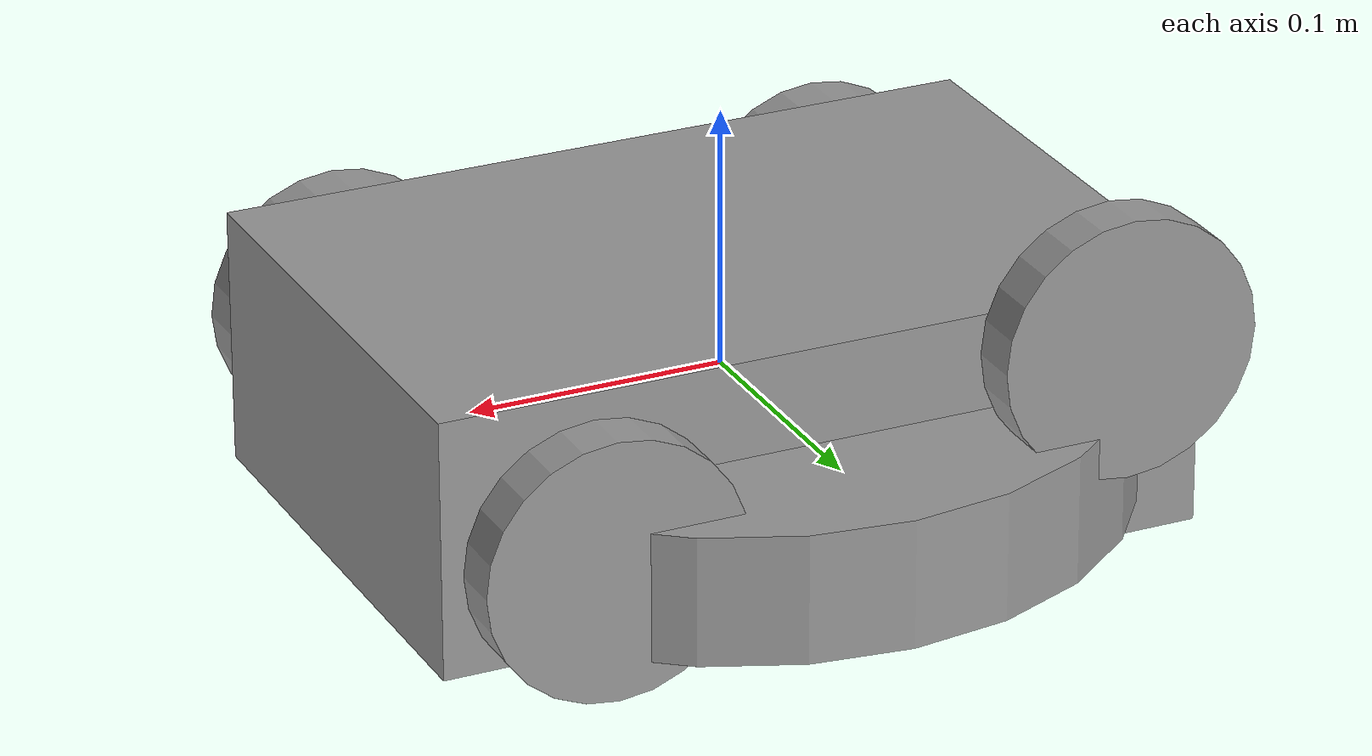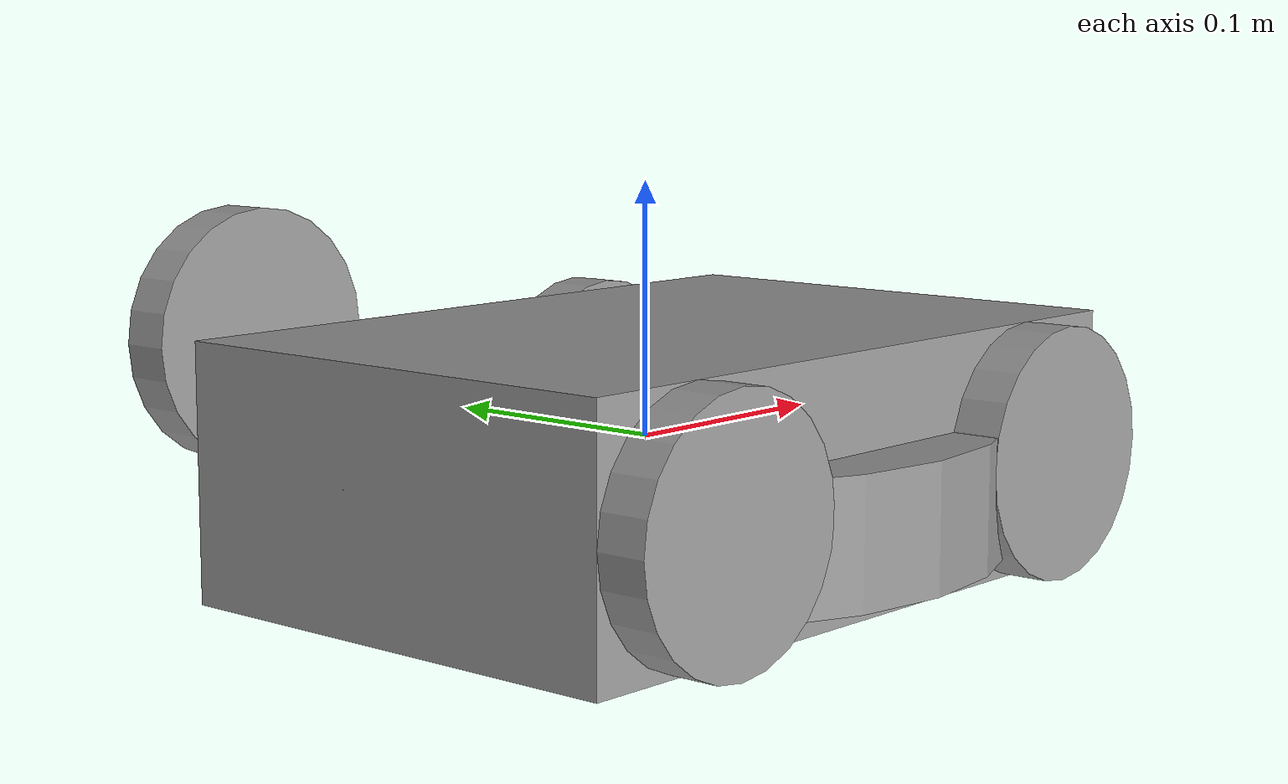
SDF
<?xml version='1.0'?>
<sdf version='1.7'>
  <model name='Project'>
    <link name='link_0'>
      <inertial>
        <mass>1</mass>
        <inertia>
          <ixx>0.166667</ixx>
          <ixy>0</ixy>
          <ixz>0</ixz>
          <iyy>0.166667</iyy>
          <iyz>0</iyz>
          <izz>0.166667</izz>
        </inertia>
        <pose>0 0 0 0 -0 0</pose>
      </inertial>
      <pose>3e-06 -0.009986 -0.005415 0 -0 0</pose>
      <gravity>1</gravity>
      <self_collide>0</self_collide>
      <kinematic>0</kinematic>
      <enable_wind>0</enable_wind>
      <visual name='visual'>
        <pose>0 0 0 0 -0 0</pose>
        <geometry>
          <box>
            <size>0.3 0.2 0.1</size>
          </box>
        </geometry>
        <material>
          <lighting>1</lighting>
          <script>
            <uri>file://media/materials/scripts/gazebo.material</uri>
            <name>Gazebo/Grey</name>
          </script>
          <shader type='pixel'>
            <normal_map>__default__</normal_map>
          </shader>
          <ambient>0.3 0.3 0.3 1</ambient>
          <diffuse>0.7 0.7 0.7 1</diffuse>
          <specular>0.01 0.01 0.01 1</specular>
          <emissive>0 0 0 1</emissive>
        </material>
        <transparency>0</transparency>
        <cast_shadows>1</cast_shadows>
      </visual>
      <collision name='collision'>
        <laser_retro>0</laser_retro>
        <max_contacts>10</max_contacts>
        <pose>0 0 0 0 -0 0</pose>
        <geometry>
          <box>
            <size>0.3 0.2 0.1</size>
          </box>
        </geometry>
        <surface>
          <friction>
            <ode>
              <mu>1</mu>
              <mu2>1</mu2>
              <fdir1>0 0 0</fdir1>
              <slip1>0</slip1>
              <slip2>0</slip2>
            </ode>
            <torsional>
              <coefficient>1</coefficient>
              <patch_radius>0</patch_radius>
              <surface_radius>0</surface_radius>
              <use_patch_radius>1</use_patch_radius>
              <ode>
                <slip>0</slip>
              </ode>
            </torsional>
          </friction>
          <bounce>
            <restitution_coefficient>0</restitution_coefficient>
            <threshold>1e+06</threshold>
          </bounce>
          <contact>
            <collide_without_contact>0</collide_without_contact>
            <collide_without_contact_bitmask>1</collide_without_contact_bitmask>
            <collide_bitmask>1</collide_bitmask>
            <ode>
              <soft_cfm>0</soft_cfm>
              <soft_erp>0.2</soft_erp>
              <kp>1e+13</kp>
              <kd>1</kd>
              <max_vel>0.01</max_vel>
              <min_depth>0</min_depth>
            </ode>
            <bullet>
              <split_impulse>1</split_impulse>
              <split_impulse_penetration_threshold>-0.01</split_impulse_penetration_threshold>
              <soft_cfm>0</soft_cfm>
              <soft_erp>0.2</soft_erp>
              <kp>1e+13</kp>
              <kd>1</kd>
            </bullet>
          </contact>
        </surface>
      </collision>
    </link>
    <link name='link_1'>
      <inertial>
        <mass>1</mass>
        <inertia>
          <ixx>0.145833</ixx>
          <ixy>0</ixy>
          <ixz>0</ixz>
          <iyy>0.145833</iyy>
          <iyz>0</iyz>
          <izz>0.125</izz>
        </inertia>
        <pose>0 0 0 0 -0 0</pose>
      </inertial>
      <pose>-0.099997 -0.120027 -0.005434 1.5705 -0 0</pose>
      <gravity>1</gravity>
      <self_collide>0</self_collide>
      <kinematic>0</kinematic>
      <enable_wind>0</enable_wind>
      <visual name='visual'>
        <pose>0 0 0 0 -0 0</pose>
        <geometry>
          <cylinder>
            <radius>0.05</radius>
            <length>0.02</length>
          </cylinder>
        </geometry>
        <material>
          <lighting>1</lighting>
          <script>
            <uri>file://media/materials/scripts/gazebo.material</uri>
            <name>Gazebo/Grey</name>
          </script>
          <shader type='pixel'>
            <normal_map>__default__</normal_map>
          </shader>
          <ambient>0.3 0.3 0.3 1</ambient>
          <diffuse>0.7 0.7 0.7 1</diffuse>
          <specular>0.01 0.01 0.01 1</specular>
          <emissive>0 0 0 1</emissive>
        </material>
        <transparency>0</transparency>
        <cast_shadows>1</cast_shadows>
      </visual>
      <collision name='collision'>
        <laser_retro>0</laser_retro>
        <max_contacts>10</max_contacts>
        <pose>0 0 0 0 -0 0</pose>
        <geometry>
          <cylinder>
            <radius>0.05</radius>
            <length>0.02</length>
          </cylinder>
        </geometry>
        <surface>
          <friction>
            <ode>
              <mu>1</mu>
              <mu2>1</mu2>
              <fdir1>0 0 0</fdir1>
              <slip1>0</slip1>
              <slip2>0</slip2>
            </ode>
            <torsional>
              <coefficient>1</coefficient>
              <patch_radius>0</patch_radius>
              <surface_radius>0</surface_radius>
              <use_patch_radius>1</use_patch_radius>
              <ode>
                <slip>0</slip>
              </ode>
            </torsional>
          </friction>
          <bounce>
            <restitution_coefficient>0</restitution_coefficient>
            <threshold>1e+06</threshold>
          </bounce>
          <contact>
            <collide_without_contact>0</collide_without_contact>
            <collide_without_contact_bitmask>1</collide_without_contact_bitmask>
            <collide_bitmask>1</collide_bitmask>
            <ode>
              <soft_cfm>0</soft_cfm>
              <soft_erp>0.2</soft_erp>
              <kp>1e+13</kp>
              <kd>1</kd>
              <max_vel>0.01</max_vel>
              <min_depth>0</min_depth>
            </ode>
            <bullet>
              <split_impulse>1</split_impulse>
              <split_impulse_penetration_threshold>-0.01</split_impulse_penetration_threshold>
              <soft_cfm>0</soft_cfm>
              <soft_erp>0.2</soft_erp>
              <kp>1e+13</kp>
              <kd>1</kd>
            </bullet>
          </contact>
        </surface>
      </collision>
    </link>
    <link name='link_1_clone'>
      <inertial>
        <mass>1</mass>
        <inertia>
          <ixx>0.145833</ixx>
          <ixy>0</ixy>
          <ixz>0</ixz>
          <iyy>0.145833</iyy>
          <iyz>0</iyz>
          <izz>0.125</izz>
        </inertia>
        <pose>0 0 0 0 -0 0</pose>
      </inertial>
      <pose>-0.099997 0.119999 0.039585 1.5705 -0 0</pose>
      <gravity>1</gravity>
      <self_collide>0</self_collide>
      <kinematic>0</kinematic>
      <enable_wind>0</enable_wind>
      <visual name='visual'>
        <pose>0 0 0 0 -0 0</pose>
        <geometry>
          <cylinder>
            <radius>0.05</radius>
            <length>0.02</length>
          </cylinder>
        </geometry>
        <material>
          <lighting>1</lighting>
          <script>
            <uri>file://media/materials/scripts/gazebo.material</uri>
            <name>Gazebo/Grey</name>
          </script>
          <shader type='pixel'>
            <normal_map>__default__</normal_map>
          </shader>
          <ambient>0.3 0.3 0.3 1</ambient>
          <diffuse>0.7 0.7 0.7 1</diffuse>
          <specular>0.01 0.01 0.01 1</specular>
          <emissive>0 0 0 1</emissive>
        </material>
        <transparency>0</transparency>
        <cast_shadows>1</cast_shadows>
      </visual>
      <collision name='collision'>
        <laser_retro>0</laser_retro>
        <max_contacts>10</max_contacts>
        <pose>0 0 0 0 -0 0</pose>
        <geometry>
          <cylinder>
            <radius>0.05</radius>
            <length>0.02</length>
          </cylinder>
        </geometry>
        <surface>
          <friction>
            <ode>
              <mu>1</mu>
              <mu2>1</mu2>
              <fdir1>0 0 0</fdir1>
              <slip1>0</slip1>
              <slip2>0</slip2>
            </ode>
            <torsional>
              <coefficient>1</coefficient>
              <patch_radius>0</patch_radius>
              <surface_radius>0</surface_radius>
              <use_patch_radius>1</use_patch_radius>
              <ode>
                <slip>0</slip>
              </ode>
            </torsional>
          </friction>
          <bounce>
            <restitution_coefficient>0</restitution_coefficient>
            <threshold>1e+06</threshold>
          </bounce>
          <contact>
            <collide_without_contact>0</collide_without_contact>
            <collide_without_contact_bitmask>1</collide_without_contact_bitmask>
            <collide_bitmask>1</collide_bitmask>
            <ode>
              <soft_cfm>0</soft_cfm>
              <soft_erp>0.2</soft_erp>
              <kp>1e+13</kp>
              <kd>1</kd>
              <max_vel>0.01</max_vel>
              <min_depth>0</min_depth>
            </ode>
            <bullet>
              <split_impulse>1</split_impulse>
              <split_impulse_penetration_threshold>-0.01</split_impulse_penetration_threshold>
              <soft_cfm>0</soft_cfm>
              <soft_erp>0.2</soft_erp>
              <kp>1e+13</kp>
              <kd>1</kd>
            </bullet>
          </contact>
        </surface>
      </collision>
    </link>
    <link name='link_1_clone_0'>
      <inertial>
        <mass>1</mass>
        <inertia>
          <ixx>0.145833</ixx>
          <ixy>0</ixy>
          <ixz>0</ixz>
          <iyy>0.145833</iyy>
          <iyz>0</iyz>
          <izz>0.125</izz>
        </inertia>
        <pose>0 0 0 0 -0 0</pose>
      </inertial>
      <pose>0.100003 0.12 -0.005412 1.5705 -0 0</pose>
      <gravity>1</gravity>
      <self_collide>0</self_collide>
      <kinematic>0</kinematic>
      <enable_wind>0</enable_wind>
      <visual name='visual'>
        <pose>0 0 0 0 -0 0</pose>
        <geometry>
          <cylinder>
            <radius>0.05</radius>
            <length>0.02</length>
          </cylinder>
        </geometry>
        <material>
          <lighting>1</lighting>
          <script>
            <uri>file://media/materials/scripts/gazebo.material</uri>
            <name>Gazebo/Grey</name>
          </script>
          <shader type='pixel'>
            <normal_map>__default__</normal_map>
          </shader>
          <ambient>0.3 0.3 0.3 1</ambient>
          <diffuse>0.7 0.7 0.7 1</diffuse>
          <specular>0.01 0.01 0.01 1</specular>
          <emissive>0 0 0 1</emissive>
        </material>
        <transparency>0</transparency>
        <cast_shadows>1</cast_shadows>
      </visual>
      <collision name='collision'>
        <laser_retro>0</laser_retro>
        <max_contacts>10</max_contacts>
        <pose>0 0 0 0 -0 0</pose>
        <geometry>
          <cylinder>
            <radius>0.05</radius>
            <length>0.02</length>
          </cylinder>
        </geometry>
        <surface>
          <friction>
            <ode>
              <mu>1</mu>
              <mu2>1</mu2>
              <fdir1>0 0 0</fdir1>
              <slip1>0</slip1>
              <slip2>0</slip2>
            </ode>
            <torsional>
              <coefficient>1</coefficient>
              <patch_radius>0</patch_radius>
              <surface_radius>0</surface_radius>
              <use_patch_radius>1</use_patch_radius>
              <ode>
                <slip>0</slip>
              </ode>
            </torsional>
          </friction>
          <bounce>
            <restitution_coefficient>0</restitution_coefficient>
            <threshold>1e+06</threshold>
          </bounce>
          <contact>
            <collide_without_contact>0</collide_without_contact>
            <collide_without_contact_bitmask>1</collide_without_contact_bitmask>
            <collide_bitmask>1</collide_bitmask>
            <ode>
              <soft_cfm>0</soft_cfm>
              <soft_erp>0.2</soft_erp>
              <kp>1e+13</kp>
              <kd>1</kd>
              <max_vel>0.01</max_vel>
              <min_depth>0</min_depth>
            </ode>
            <bullet>
              <split_impulse>1</split_impulse>
              <split_impulse_penetration_threshold>-0.01</split_impulse_penetration_threshold>
              <soft_cfm>0</soft_cfm>
              <soft_erp>0.2</soft_erp>
              <kp>1e+13</kp>
              <kd>1</kd>
            </bullet>
          </contact>
        </surface>
      </collision>
    </link>
    <link name='link_1_clone_1'>
      <inertial>
        <mass>1</mass>
        <inertia>
          <ixx>0.145833</ixx>
          <ixy>0</ixy>
          <ixz>0</ixz>
          <iyy>0.145833</iyy>
          <iyz>0</iyz>
          <izz>0.125</izz>
        </inertia>
        <pose>0 0 0 0 -0 0</pose>
      </inertial>
      <pose>0.100003 -0.12 -0.005412 1.5705 -0 0</pose>
      <gravity>1</gravity>
      <self_collide>0</self_collide>
      <kinematic>0</kinematic>
      <enable_wind>0</enable_wind>
      <visual name='visual'>
        <pose>0 0 0 0 -0 0</pose>
        <geometry>
          <cylinder>
            <radius>0.05</radius>
            <length>0.02</length>
          </cylinder>
        </geometry>
        <material>
          <lighting>1</lighting>
          <script>
            <uri>file://media/materials/scripts/gazebo.material</uri>
            <name>Gazebo/Grey</name>
          </script>
          <shader type='pixel'>
            <normal_map>__default__</normal_map>
          </shader>
          <ambient>0.3 0.3 0.3 1</ambient>
          <diffuse>0.7 0.7 0.7 1</diffuse>
          <specular>0.01 0.01 0.01 1</specular>
          <emissive>0 0 0 1</emissive>
        </material>
        <transparency>0</transparency>
        <cast_shadows>1</cast_shadows>
      </visual>
      <collision name='collision'>
        <laser_retro>0</laser_retro>
        <max_contacts>10</max_contacts>
        <pose>0 0 0 0 -0 0</pose>
        <geometry>
          <cylinder>
            <radius>0.05</radius>
            <length>0.02</length>
          </cylinder>
        </geometry>
        <surface>
          <friction>
            <ode>
              <mu>1</mu>
              <mu2>1</mu2>
              <fdir1>0 0 0</fdir1>
              <slip1>0</slip1>
              <slip2>0</slip2>
            </ode>
            <torsional>
              <coefficient>1</coefficient>
              <patch_radius>0</patch_radius>
              <surface_radius>0</surface_radius>
              <use_patch_radius>1</use_patch_radius>
              <ode>
                <slip>0</slip>
              </ode>
            </torsional>
          </friction>
          <bounce>
            <restitution_coefficient>0</restitution_coefficient>
            <threshold>1e+06</threshold>
          </bounce>
          <contact>
            <collide_without_contact>0</collide_without_contact>
            <collide_without_contact_bitmask>1</collide_without_contact_bitmask>
            <collide_bitmask>1</collide_bitmask>
            <ode>
              <soft_cfm>0</soft_cfm>
              <soft_erp>0.2</soft_erp>
              <kp>1e+13</kp>
              <kd>1</kd>
              <max_vel>0.01</max_vel>
              <min_depth>0</min_depth>
            </ode>
            <bullet>
              <split_impulse>1</split_impulse>
              <split_impulse_penetration_threshold>-0.01</split_impulse_penetration_threshold>
              <soft_cfm>0</soft_cfm>
              <soft_erp>0.2</soft_erp>
              <kp>1e+13</kp>
              <kd>1</kd>
            </bullet>
          </contact>
        </surface>
      </collision>
    </link>
    <link name='link_2'>
      <inertial>
        <mass>1</mass>
        <inertia>
          <ixx>0.145833</ixx>
          <ixy>0</ixy>
          <ixz>0</ixz>
          <iyy>0.145833</iyy>
          <iyz>0</iyz>
          <izz>0.125</izz>
        </inertia>
        <pose>0 0 0 0 -0 0</pose>
      </inertial>
      <pose>3e-06 0.010014 -0.017915 0 -0 0</pose>
      <gravity>1</gravity>
      <self_collide>0</self_collide>
      <kinematic>0</kinematic>
      <enable_wind>0</enable_wind>
      <visual name='visual'>
        <pose>0 0 0 0 -0 0</pose>
        <geometry>
          <cylinder>
            <radius>0.15</radius>
            <length>0.05</length>
          </cylinder>
        </geometry>
        <material>
          <lighting>1</lighting>
          <script>
            <uri>file://media/materials/scripts/gazebo.material</uri>
            <name>Gazebo/Grey</name>
          </script>
          <shader type='pixel'>
            <normal_map>__default__</normal_map>
          </shader>
          <ambient>0.3 0.3 0.3 1</ambient>
          <diffuse>0.7 0.7 0.7 1</diffuse>
          <specular>0.01 0.01 0.01 1</specular>
          <emissive>0 0 0 1</emissive>
        </material>
        <transparency>0</transparency>
        <cast_shadows>1</cast_shadows>
      </visual>
      <collision name='collision'>
        <laser_retro>0</laser_retro>
        <max_contacts>10</max_contacts>
        <pose>0 0 0 0 -0 0</pose>
        <geometry>
          <cylinder>
            <radius>0.15</radius>
            <length>0.05</length>
          </cylinder>
        </geometry>
        <surface>
          <friction>
            <ode>
              <mu>1</mu>
              <mu2>1</mu2>
              <fdir1>0 0 0</fdir1>
              <slip1>0</slip1>
              <slip2>0</slip2>
            </ode>
            <torsional>
              <coefficient>1</coefficient>
              <patch_radius>0</patch_radius>
              <surface_radius>0</surface_radius>
              <use_patch_radius>1</use_patch_radius>
              <ode>
                <slip>0</slip>
              </ode>
            </torsional>
          </friction>
          <bounce>
            <restitution_coefficient>0</restitution_coefficient>
            <threshold>1e+06</threshold>
          </bounce>
          <contact>
            <collide_without_contact>0</collide_without_contact>
            <collide_without_contact_bitmask>1</collide_without_contact_bitmask>
            <collide_bitmask>1</collide_bitmask>
            <ode>
              <soft_cfm>0</soft_cfm>
              <soft_erp>0.2</soft_erp>
              <kp>1e+13</kp>
              <kd>1</kd>
              <max_vel>0.01</max_vel>
              <min_depth>0</min_depth>
            </ode>
            <bullet>
              <split_impulse>1</split_impulse>
              <split_impulse_penetration_threshold>-0.01</split_impulse_penetration_threshold>
              <soft_cfm>0</soft_cfm>
              <soft_erp>0.2</soft_erp>
              <kp>1e+13</kp>
              <kd>1</kd>
            </bullet>
          </contact>
        </surface>
      </collision>
    </link>
    <joint name='link_0_JOINT_0' type='revolute'>
      <parent>link_0</parent>
      <child>link_1</child>
      <pose>0 0 0 0 -0 0</pose>
      <axis>
        <xyz>0 0 1</xyz>
        <limit>
          <lower>-1.79769e+308</lower>
          <upper>1.79769e+308</upper>
          <effort>-1</effort>
          <velocity>-1</velocity>
        </limit>
        <dynamics>
          <spring_reference>0</spring_reference>
          <spring_stiffness>0</spring_stiffness>
          <damping>0</damping>
        </dynamics>
      </axis>
      <physics>
        <ode>
          <limit>
            <cfm>0</cfm>
            <erp>0.2</erp>
          </limit>
          <suspension>
            <cfm>0</cfm>
            <erp>0.2</erp>
          </suspension>
        </ode>
      </physics>
    </joint>
    <joint name='link_0_JOINT_1' type='revolute'>
      <parent>link_0</parent>
      <child>link_1_clone</child>
      <pose>0 0 0 0 -0 0</pose>
      <axis>
        <xyz>0 0 1</xyz>
        <limit>
          <lower>-1.79769e+308</lower>
          <upper>1.79769e+308</upper>
          <effort>-1</effort>
          <velocity>-1</velocity>
        </limit>
        <dynamics>
          <spring_reference>0</spring_reference>
          <spring_stiffness>0</spring_stiffness>
          <damping>0</damping>
          <friction>0</friction>
        </dynamics>
      </axis>
      <physics>
        <ode>
          <limit>
            <cfm>0</cfm>
            <erp>0.2</erp>
          </limit>
          <suspension>
            <cfm>0</cfm>
            <erp>0.2</erp>
          </suspension>
        </ode>
      </physics>
    </joint>
    <joint name='link_0_JOINT_2' type='revolute'>
      <parent>link_0</parent>
      <child>link_1_clone_1</child>
      <pose>0 0 0 0 -0 0</pose>
      <axis>
        <xyz>0 0 1</xyz>
        <limit>
          <lower>-1.79769e+308</lower>
          <upper>1.79769e+308</upper>
          <effort>-1</effort>
          <velocity>-1</velocity>
        </limit>
        <dynamics>
          <spring_reference>0</spring_reference>
          <spring_stiffness>0</spring_stiffness>
          <damping>0</damping>
        </dynamics>
      </axis>
      <physics>
        <ode>
          <limit>
            <cfm>0</cfm>
            <erp>0.2</erp>
          </limit>
          <suspension>
            <cfm>0</cfm>
            <erp>0.2</erp>
          </suspension>
        </ode>
      </physics>
    </joint>
    <joint name='link_0_JOINT_3' type='revolute'>
      <parent>link_0</parent>
      <child>link_1_clone_0</child>
      <pose>0 0 0 0 -0 0</pose>
      <axis>
        <xyz>0 0 1</xyz>
        <limit>
          <lower>-1.79769e+308</lower>
          <upper>1.79769e+308</upper>
          <effort>-1</effort>
          <velocity>-1</velocity>
        </limit>
        <dynamics>
          <spring_reference>0</spring_reference>
          <spring_stiffness>0</spring_stiffness>
          <damping>0</damping>
        </dynamics>
      </axis>
      <physics>
        <ode>
          <limit>
            <cfm>0</cfm>
            <erp>0.2</erp>
          </limit>
          <suspension>
            <cfm>0</cfm>
            <erp>0.2</erp>
          </suspension>
        </ode>
      </physics>
    </joint>
    <joint name='link_0_JOINT_4' type='revolute'>
      <parent>link_0</parent>
      <child>link_2</child>
      <pose>0 0 0 0 -0 0</pose>
      <axis>
        <xyz>0 0 1</xyz>
        <limit>
          <lower>-1.79769e+308</lower>
          <upper>1.79769e+308</upper>
          <effort>-1</effort>
          <velocity>-1</velocity>
        </limit>
        <dynamics>
          <spring_reference>0</spring_reference>
          <spring_stiffness>0</spring_stiffness>
          <damping>0</damping>
        </dynamics>
      </axis>
      <physics>
        <ode>
          <limit>
            <cfm>0</cfm>
            <erp>0.2</erp>
          </limit>
          <suspension>
            <cfm>0</cfm>
            <erp>0.2</erp>
          </suspension>
        </ode>
      </physics>
    </joint>
    <static>0</static>
    <allow_auto_disable>1</allow_auto_disable>
  </model>
</sdf>
